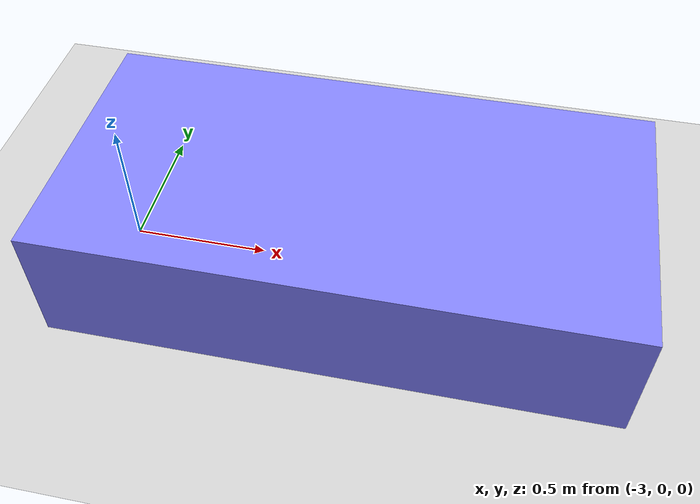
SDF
<?xml version="1.0" ?>
<sdf version="1.7">
    <!-- We use a custom world for the rrbot so that the camera angle is launched correctly -->
    <world name="rrbot_world">

    <!-- world plugin to get info from the models-->
    <physics name="1ms" type="ignored"> <max_step_size>0.001</max_step_size> <real_time_factor>1.0</real_time_factor></physics>
    <plugin filename="ignition-gazebo-scene-broadcaster-system" name="gz::sim::systems::SceneBroadcaster"></plugin>
    <plugin filename="ignition-gazebo-sensors-system" name="gz::sim::systems::Sensors"><render_engine>ogre2</render_engine></plugin>
    <plugin filename="ignition-gazebo-user-commands-system" name="gz::sim::systems::UserCommands"></plugin>
    <plugin filename="ignition-gazebo-physics-system" name="gz::sim::systems::Physics"> </plugin>
    <plugin name='ignition::gazebo::systems::Contact' filename='ignition-gazebo-contact-system' />

    <!-- A global light source -->
    <include>
      <uri>
        https://fuel.gazebosim.org/1.0/OpenRobotics/models/sun
      </uri>
    </include>

    <!-- A ground plane -->
    <include>
      <uri>
        https://fuel.gazebosim.org/1.0/OpenRobotics/models/Ground%20Plane
      </uri>
    </include>

      <!-- block -->
      <include>
        <uri>model://myblock</uri>
        <pose>-2 0 0 0 0 0</pose>
      </include>

      <!-- white pieces -->

      <!-- Focus camera on tall pendulum -->
      <gui fullscreen='0'>
        <camera name='user_camera'>
          <pose>4.927360 -4.376610 3.740080 0.000000 0.275643 2.356190</pose>
          <view_controller>orbit</view_controller>
        </camera>
      </gui>

    </world>
</sdf>

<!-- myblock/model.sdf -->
<sdf version="1.5">
  <model name="myblock">
    <static>true</static>
    <link name="link">
        <pose>-0.151427 -0 0.175 0 -0 0</pose>
        <inertial>
          <mass>1.14395</mass>
          <inertia>
            <ixx>0.126164</ixx>
            <ixy>0</ixy>
            <ixz>0</ixz>
            <iyy>0.416519</iyy>
            <iyz>0</iyz>
            <izz>0.481014</izz>
          </inertia>
        </inertial>
        <collision name='collision_chassis'>
          <geometry>
            <box>
              <size>2.01142 1 0.568726</size>
            </box>
          </geometry>
        </collision>
        <visual name='visual_chassis'>
          <geometry>
            <box>
              <size>2.01142 1 0.568726</size>
            </box>
          </geometry>
          <material>
            <ambient>0.5 0.5 1.0 1</ambient>
            <diffuse>0.5 0.5 1.0 1</diffuse>
            <specular>0.0 0.0 1.0 1</specular>
          </material>
        </visual>
    </link>
  </model>
</sdf>
